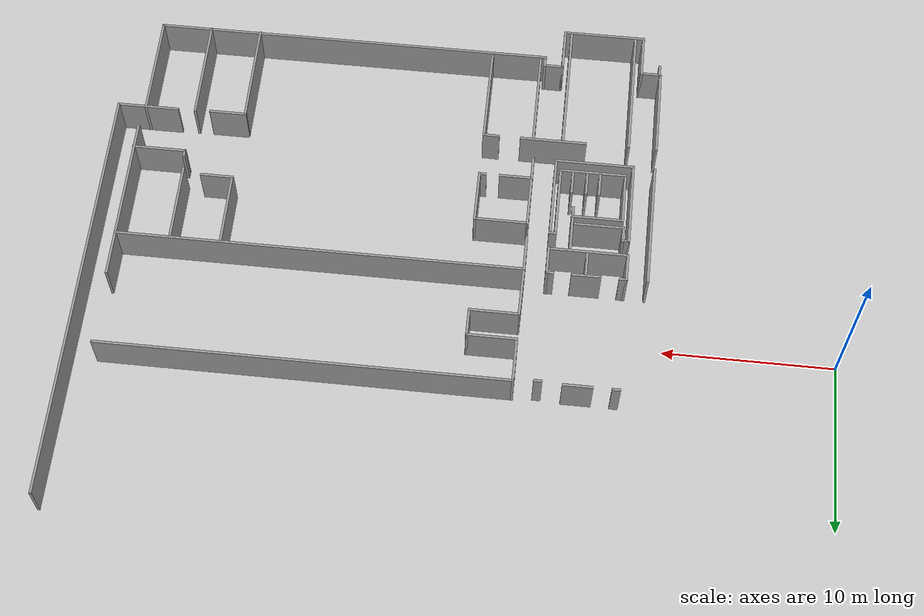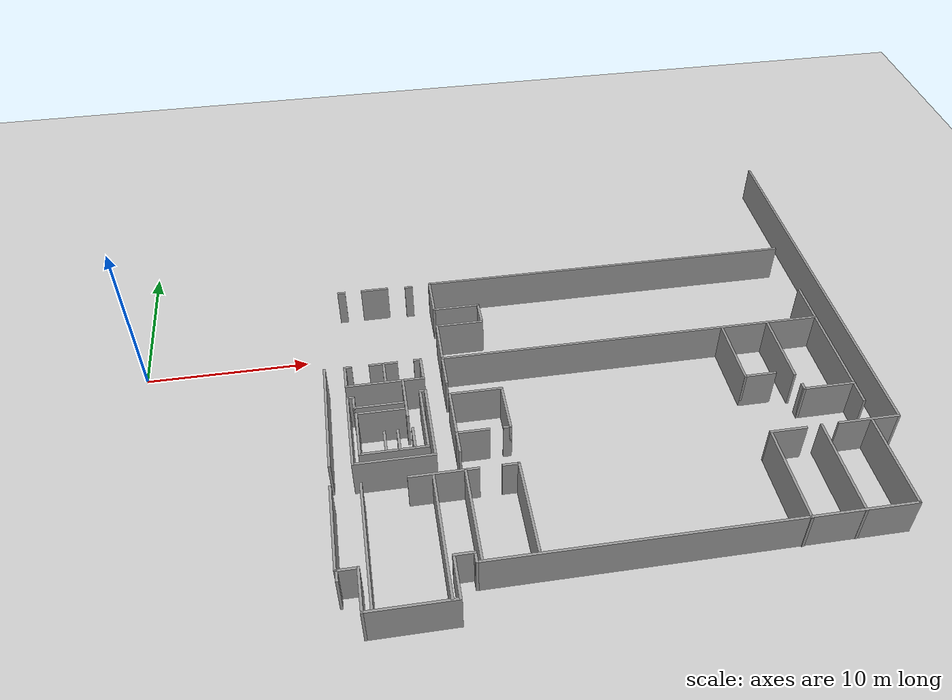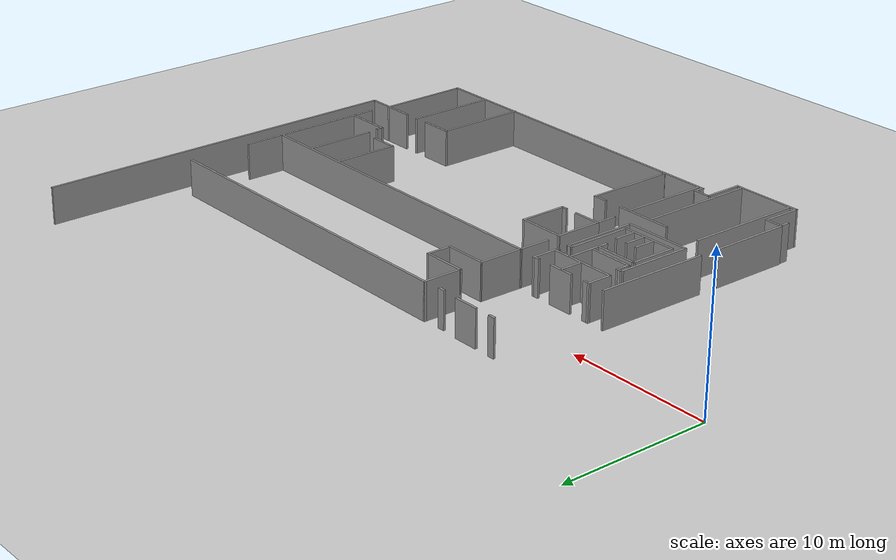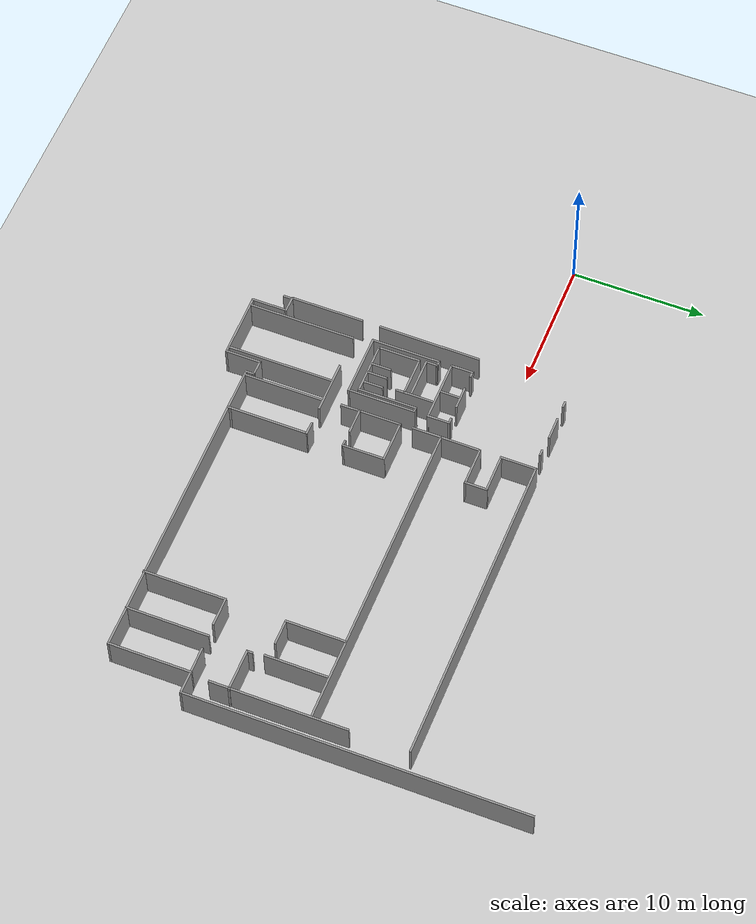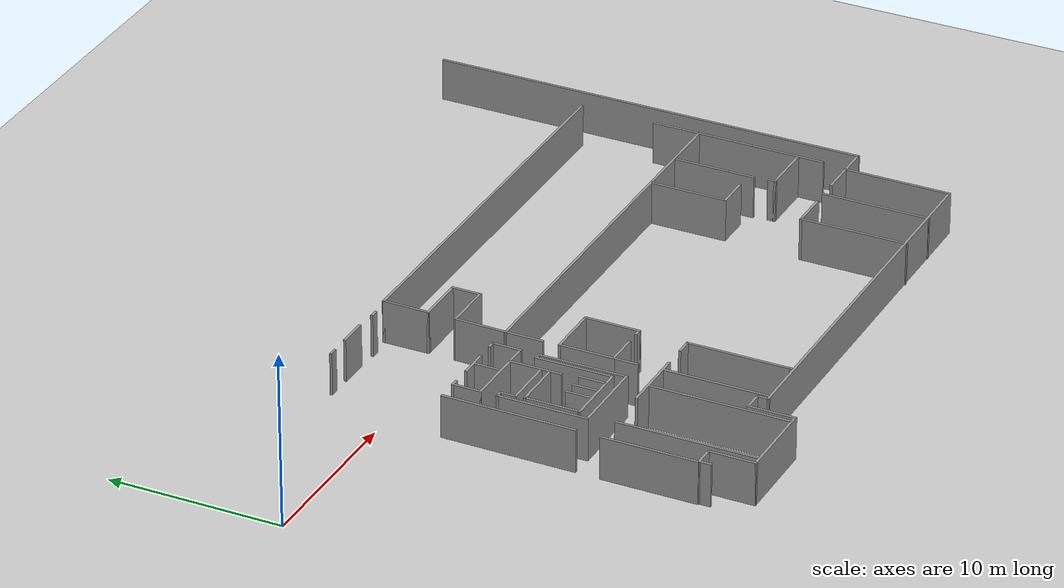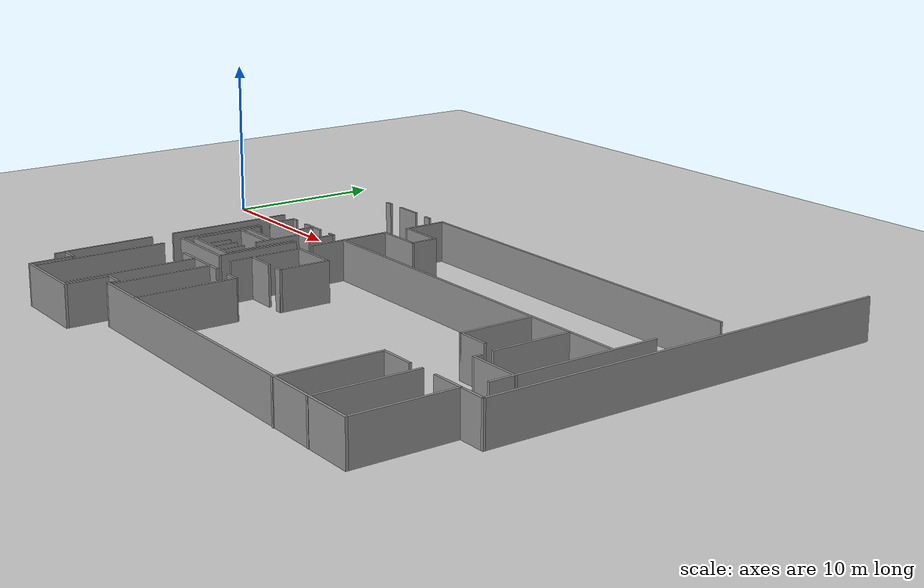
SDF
<sdf version="1.7">
 <world name="default">
  <model name="ground_plane">
   <static>1</static>
   <link name="link">
    <collision name="collision">
     <geometry><plane><normal>0 0 1</normal><size>100 100</size></plane></geometry>
     <surface>
      <contact><collide_bitmask>65535</collide_bitmask></contact>
      <friction><ode><mu>100</mu><mu2>50</mu2></ode></friction>
     </surface>
    </collision>
    <visual name="visual">
     <cast_shadows>0</cast_shadows>
     <geometry><plane><normal>0 0 1</normal><size>100 100</size></plane></geometry>
     <material>
      <script><uri>file://media/materials/scripts/gazebo.material</uri><name>Gazebo/Grey</name></script>
     </material>
    </visual>
   </link>
  </model>
  <model name="minerva">
   <pose>-0.765751 0.164905 0 0 -0 0</pose>
   <link name="Wall_102">
    <collision name="Wall_102_Collision">
     <geometry><box><size>5.5 0.15 2.5</size></box></geometry>
     <pose>0 0 1.25 0 -0 0</pose>
    </collision>
    <visual name="Wall_102_Visual">
     <pose>0 0 1.25 0 -0 0</pose>
     <geometry><box><size>5.5 0.15 2.5</size></box></geometry>
     <material>
      <script><uri>file://media/materials/scripts/gazebo.material</uri><name>Gazebo/Grey</name></script>
      <ambient>1 1 1 1</ambient>
     </material>
     <meta><layer>0</layer></meta>
    </visual>
    <pose>11.8632 -15.1957 0 0 -0 -1.5708</pose>
   </link>
   <link name="Wall_104">
    <collision name="Wall_104_Collision">
     <geometry><box><size>4 0.15 2.5</size></box></geometry>
     <pose>0 0 1.25 0 -0 0</pose>
    </collision>
    <visual name="Wall_104_Visual">
     <pose>0 0 1.25 0 -0 0</pose>
     <geometry><box><size>4 0.15 2.5</size></box></geometry>
     <material>
      <script><uri>file://media/materials/scripts/gazebo.material</uri><name>Gazebo/Grey</name></script>
      <ambient>1 1 1 1</ambient>
     </material>
     <meta><layer>0</layer></meta>
    </visual>
    <pose>18.0466 -12.4902 0 0 -0 0</pose>
   </link>
   <link name="Wall_106">
    <collision name="Wall_106_Collision">
     <geometry><box><size>8 0.15 2.5</size></box></geometry>
     <pose>0 0 1.25 0 -0 0</pose>
    </collision>
    <visual name="Wall_106_Visual">
     <pose>0 0 1.25 0 -0 0</pose>
     <geometry><box><size>8 0.15 2.5</size></box></geometry>
     <material>
      <script><uri>file://media/materials/scripts/gazebo.material</uri><name>Gazebo/Grey</name></script>
      <ambient>1 1 1 1</ambient>
     </material>
     <meta><layer>0</layer></meta>
    </visual>
    <pose>13.521 -16.4913 0 0 -0 -1.5708</pose>
   </link>
   <link name="Wall_110">
    <collision name="Wall_110_Collision">
     <geometry><box><size>8 0.15 2.5</size></box></geometry>
     <pose>0 0 1.25 0 -0 0</pose>
    </collision>
    <visual name="Wall_110_Visual">
     <pose>0 0 1.25 0 -0 0</pose>
     <geometry><box><size>8 0.15 2.5</size></box></geometry>
     <material>
      <script><uri>file://media/materials/scripts/gazebo.material</uri><name>Gazebo/Grey</name></script>
      <ambient>1 1 1 1</ambient>
     </material>
     <meta><layer>0</layer></meta>
    </visual>
    <pose>17.4752 -16.5217 0 0 -0 -1.5708</pose>
   </link>
   <link name="Wall_112">
    <collision name="Wall_112_Collision">
     <geometry><box><size>6 0.15 2.5</size></box></geometry>
     <pose>0 0 1.25 0 -0 0</pose>
    </collision>
    <visual name="Wall_112_Visual">
     <pose>0 0 1.25 0 -0 0</pose>
     <geometry><box><size>6 0.15 2.5</size></box></geometry>
     <material>
      <script><uri>file://media/materials/scripts/gazebo.material</uri><name>Gazebo/Grey</name></script>
      <ambient>1 1 1 1</ambient>
     </material>
     <meta><layer>0</layer></meta>
    </visual>
    <pose>19.2547 -15.4913 0 0 -0 -1.5708</pose>
   </link>
   <link name="Wall_114">
    <collision name="Wall_114_Collision">
     <geometry><box><size>1.01534 0.15 2.5</size></box></geometry>
     <pose>0 0 1.25 0 -0 0</pose>
    </collision>
    <visual name="Wall_114_Visual">
     <pose>0 0 1.25 0 -0 0</pose>
     <geometry><box><size>1.01534 0.15 2.5</size></box></geometry>
     <material>
      <script><uri>file://media/materials/scripts/gazebo.material</uri><name>Gazebo/Grey</name></script>
      <ambient>1 1 1 1</ambient>
     </material>
     <meta><layer>0</layer></meta>
    </visual>
    <pose>21.8013 -12.4978 0 0 -0 -0.017576</pose>
   </link>
   <link name="Wall_115">
    <collision name="Wall_115_Collision">
     <geometry><box><size>6 0.15 2.5</size></box></geometry>
     <pose>0 0 1.25 0 -0 0</pose>
    </collision>
    <visual name="Wall_115_Visual">
     <pose>0 0 1.25 0 -0 0</pose>
     <geometry><box><size>6 0.15 2.5</size></box></geometry>
     <material>
      <script><uri>file://media/materials/scripts/gazebo.material</uri><name>Gazebo/Grey</name></script>
      <ambient>1 1 1 1</ambient>
     </material>
     <meta><layer>0</layer></meta>
    </visual>
    <pose>22.2339 -15.4457 0 0 -0 -1.5708</pose>
   </link>
   <link name="Wall_117">
    <collision name="Wall_117_Collision">
     <geometry><box><size>0.25 0.15 2.5</size></box></geometry>
     <pose>0 0 1.25 0 -0 0</pose>
    </collision>
    <visual name="Wall_117_Visual">
     <pose>0 0 1.25 0 -0 0</pose>
     <geometry><box><size>0.25 0.15 2.5</size></box></geometry>
     <material>
      <script><uri>file://media/materials/scripts/gazebo.material</uri><name>Gazebo/Grey</name></script>
      <ambient>1 1 1 1</ambient>
     </material>
     <meta><layer>0</layer></meta>
    </visual>
    <pose>22.2339 -18.4207 0 0 -0 -1.5708</pose>
   </link>
   <link name="Wall_121">
    <collision name="Wall_121_Collision">
     <geometry><box><size>10.25 0.15 2.5</size></box></geometry>
     <pose>0 0 1.25 0 -0 0</pose>
    </collision>
    <visual name="Wall_121_Visual">
     <pose>0 0 1.25 0 -0 0</pose>
     <geometry><box><size>10.25 0.15 2.5</size></box></geometry>
     <material>
      <script><uri>file://media/materials/scripts/gazebo.material</uri><name>Gazebo/Grey</name></script>
      <ambient>1 1 1 1</ambient>
     </material>
     <meta><layer>0</layer></meta>
    </visual>
    <pose>43.02 -5.93158 0 0 -0 -1.5708</pose>
   </link>
   <link name="Wall_123">
    <collision name="Wall_123_Collision">
     <geometry><box><size>3.25 0.15 2.5</size></box></geometry>
     <pose>0 0 1.25 0 -0 0</pose>
    </collision>
    <visual name="Wall_123_Visual">
     <pose>0 0 1.25 0 -0 0</pose>
     <geometry><box><size>3.25 0.15 2.5</size></box></geometry>
     <material>
      <script><uri>file://media/materials/scripts/gazebo.material</uri><name>Gazebo/Grey</name></script>
      <ambient>1 1 1 1</ambient>
     </material>
     <meta><layer>0</layer></meta>
    </visual>
    <pose>41.4931 -9.52973 0 0 -0 3.14159</pose>
   </link>
   <link name="Wall_124">
    <collision name="Wall_124_Collision">
     <geometry><box><size>0.5 0.15 2.5</size></box></geometry>
     <pose>0 0 1.25 0 -0 0</pose>
    </collision>
    <visual name="Wall_124_Visual">
     <pose>0 0 1.25 0 -0 0</pose>
     <geometry><box><size>0.5 0.15 2.5</size></box></geometry>
     <material>
      <script><uri>file://media/materials/scripts/gazebo.material</uri><name>Gazebo/Grey</name></script>
      <ambient>1 1 1 1</ambient>
     </material>
     <meta><layer>0</layer></meta>
    </visual>
    <pose>39.9431 -9.35473 0 0 -0 1.5708</pose>
   </link>
   <link name="Wall_126">
    <collision name="Wall_126_Collision">
     <geometry><box><size>4.75 0.15 2.5</size></box></geometry>
     <pose>0 0 1.25 0 -0 0</pose>
    </collision>
    <visual name="Wall_126_Visual">
     <pose>0 0 1.25 0 -0 0</pose>
     <geometry><box><size>4.75 0.15 2.5</size></box></geometry>
     <material>
      <script><uri>file://media/materials/scripts/gazebo.material</uri><name>Gazebo/Grey</name></script>
      <ambient>1 1 1 1</ambient>
     </material>
     <meta><layer>0</layer></meta>
    </visual>
    <pose>39.8077 -5.97793 0 0 -0 -1.5708</pose>
   </link>
   <link name="Wall_128">
    <collision name="Wall_128_Collision">
     <geometry><box><size>4.5 0.15 2.5</size></box></geometry>
     <pose>0 0 1.25 0 -0 0</pose>
    </collision>
    <visual name="Wall_128_Visual">
     <pose>0 0 1.25 0 -0 0</pose>
     <geometry><box><size>4.5 0.15 2.5</size></box></geometry>
     <material>
      <script><uri>file://media/materials/scripts/gazebo.material</uri><name>Gazebo/Grey</name></script>
      <ambient>1 1 1 1</ambient>
     </material>
     <meta><layer>0</layer></meta>
    </visual>
    <pose>36.8268 -5.8073 0 0 -0 -1.5708</pose>
   </link>
   <link name="Wall_129">
    <collision name="Wall_129_Collision">
     <geometry><box><size>2 0.15 2.5</size></box></geometry>
     <pose>0 0 1.25 0 -0 0</pose>
    </collision>
    <visual name="Wall_129_Visual">
     <pose>0 0 1.25 0 -0 0</pose>
     <geometry><box><size>2 0.15 2.5</size></box></geometry>
     <material>
      <script><uri>file://media/materials/scripts/gazebo.material</uri><name>Gazebo/Grey</name></script>
      <ambient>1 1 1 1</ambient>
     </material>
     <meta><layer>0</layer></meta>
    </visual>
    <pose>37.7518 -7.9823 0 0 -0 0</pose>
   </link>
   <link name="Wall_131">
    <collision name="Wall_131_Collision">
     <geometry><box><size>24 0.15 2.5</size></box></geometry>
     <pose>0 0 1.25 0 -0 0</pose>
    </collision>
    <visual name="Wall_131_Visual">
     <pose>0 0 1.25 0 -0 0</pose>
     <geometry><box><size>24 0.15 2.5</size></box></geometry>
     <material>
      <script><uri>file://media/materials/scripts/gazebo.material</uri><name>Gazebo/Grey</name></script>
      <ambient>1 1 1 1</ambient>
     </material>
     <meta><layer>0</layer></meta>
    </visual>
    <pose>31.0157 -3.55626 0 0 -0 3.14159</pose>
   </link>
   <link name="Wall_133">
    <collision name="Wall_133_Collision">
     <geometry><box><size>2.25 0.15 2.5</size></box></geometry>
     <pose>0 0 1.25 0 -0 0</pose>
    </collision>
    <visual name="Wall_133_Visual">
     <pose>0 0 1.25 0 -0 0</pose>
     <geometry><box><size>2.25 0.15 2.5</size></box></geometry>
     <material>
      <script><uri>file://media/materials/scripts/gazebo.material</uri><name>Gazebo/Grey</name></script>
      <ambient>1 1 1 1</ambient>
     </material>
     <meta><layer>0</layer></meta>
    </visual>
    <pose>19.0907 -4.60626 0 0 -0 -1.5708</pose>
   </link>
   <link name="Wall_135">
    <collision name="Wall_135_Collision">
     <geometry><box><size>24 0.15 2.5</size></box></geometry>
     <pose>0 0 1.25 0 -0 0</pose>
    </collision>
    <visual name="Wall_135_Visual">
     <pose>0 0 1.25 0 -0 0</pose>
     <geometry><box><size>24 0.15 2.5</size></box></geometry>
     <material>
      <script><uri>file://media/materials/scripts/gazebo.material</uri><name>Gazebo/Grey</name></script>
      <ambient>1 1 1 1</ambient>
     </material>
     <meta><layer>0</layer></meta>
    </visual>
    <pose>31.0488 3.59185 0 0 -0 0</pose>
   </link>
   <link name="Wall_137">
    <collision name="Wall_137_Collision">
     <geometry><box><size>2.75 0.15 2.5</size></box></geometry>
     <pose>0 0 1.25 0 -0 0</pose>
    </collision>
    <visual name="Wall_137_Visual">
     <pose>0 0 1.25 0 -0 0</pose>
     <geometry><box><size>2.75 0.15 2.5</size></box></geometry>
     <material>
      <script><uri>file://media/materials/scripts/gazebo.material</uri><name>Gazebo/Grey</name></script>
      <ambient>1 1 1 1</ambient>
     </material>
     <meta><layer>0</layer></meta>
    </visual>
    <pose>19.1238 2.29185 0 0 -0 -1.5708</pose>
   </link>
   <link name="Wall_138">
    <collision name="Wall_138_Collision">
     <geometry><box><size>3 0.15 2.5</size></box></geometry>
     <pose>0 0 1.25 0 -0 0</pose>
    </collision>
    <visual name="Wall_138_Visual">
     <pose>0 0 1.25 0 -0 0</pose>
     <geometry><box><size>3 0.15 2.5</size></box></geometry>
     <material>
      <script><uri>file://media/materials/scripts/gazebo.material</uri><name>Gazebo/Grey</name></script>
      <ambient>1 1 1 1</ambient>
     </material>
     <meta><layer>0</layer></meta>
    </visual>
    <pose>20.5488 0.991855 0 0 -0 0</pose>
   </link>
   <link name="Wall_139">
    <collision name="Wall_139_Collision">
     <geometry><box><size>1.75 0.15 2.5</size></box></geometry>
     <pose>0 0 1.25 0 -0 0</pose>
    </collision>
    <visual name="Wall_139_Visual">
     <pose>0 0 1.25 0 -0 0</pose>
     <geometry><box><size>1.75 0.15 2.5</size></box></geometry>
     <material>
      <script><uri>file://media/materials/scripts/gazebo.material</uri><name>Gazebo/Grey</name></script>
      <ambient>1 1 1 1</ambient>
     </material>
     <meta><layer>0</layer></meta>
    </visual>
    <pose>21.9738 0.191855 0 0 -0 -1.5708</pose>
   </link>
   <link name="Wall_140">
    <collision name="Wall_140_Collision">
     <geometry><box><size>3 0.15 2.5</size></box></geometry>
     <pose>0 0 1.25 0 -0 0</pose>
    </collision>
    <visual name="Wall_140_Visual">
     <pose>0 0 1.25 0 -0 0</pose>
     <geometry><box><size>3 0.15 2.5</size></box></geometry>
     <material>
      <script><uri>file://media/materials/scripts/gazebo.material</uri><name>Gazebo/Grey</name></script>
      <ambient>1 1 1 1</ambient>
     </material>
     <meta><layer>0</layer></meta>
    </visual>
    <pose>20.5488 -0.608145 0 0 -0 3.14159</pose>
   </link>
   <link name="Wall_177">
    <collision name="Wall_177_Collision">
     <geometry><box><size>3.0983 0.15 2.5</size></box></geometry>
     <pose>0 0 1.25 0 -0 0</pose>
    </collision>
    <visual name="Wall_177_Visual">
     <pose>0 0 1.25 0 -0 0</pose>
     <geometry><box><size>3.0983 0.15 2.5</size></box></geometry>
     <material>
      <script><uri>file://media/materials/scripts/gazebo.material</uri><name>Gazebo/Grey</name></script>
      <ambient>1 1 1 1</ambient>
     </material>
     <meta><layer>0</layer></meta>
    </visual>
    <pose>19.1072 -2.0822 0 0 -0 -1.58202</pose>
   </link>
   <link name="Wall_179">
    <collision name="Wall_179_Collision">
     <geometry><box><size>3.25 0.15 2.5</size></box></geometry>
     <pose>0 0 1.25 0 -0 0</pose>
    </collision>
    <visual name="Wall_179_Visual">
     <pose>0 0 1.25 0 -0 0</pose>
     <geometry><box><size>3.25 0.15 2.5</size></box></geometry>
     <material>
      <script><uri>file://media/materials/scripts/gazebo.material</uri><name>Gazebo/Grey</name></script>
      <ambient>1 1 1 1</ambient>
     </material>
     <meta><layer>0</layer></meta>
    </visual>
    <pose>20.6923 -6.63787 0 0 -0 0</pose>
   </link>
   <link name="Wall_180">
    <collision name="Wall_180_Collision">
     <geometry><box><size>3.25 0.15 2.5</size></box></geometry>
     <pose>0 0 1.25 0 -0 0</pose>
    </collision>
    <visual name="Wall_180_Visual">
     <pose>0 0 1.25 0 -0 0</pose>
     <geometry><box><size>3.25 0.15 2.5</size></box></geometry>
     <material>
      <script><uri>file://media/materials/scripts/gazebo.material</uri><name>Gazebo/Grey</name></script>
      <ambient>1 1 1 1</ambient>
     </material>
     <meta><layer>0</layer></meta>
    </visual>
    <pose>22.2423 -8.18787 0 0 -0 -1.5708</pose>
   </link>
   <link name="Wall_182">
    <collision name="Wall_182_Collision">
     <geometry><box><size>0.5 0.15 2.5</size></box></geometry>
     <pose>0 0 1.25 0 -0 0</pose>
    </collision>
    <visual name="Wall_182_Visual">
     <pose>0 0 1.25 0 -0 0</pose>
     <geometry><box><size>0.5 0.15 2.5</size></box></geometry>
     <material>
      <script><uri>file://media/materials/scripts/gazebo.material</uri><name>Gazebo/Grey</name></script>
      <ambient>1 1 1 1</ambient>
     </material>
     <meta><layer>0</layer></meta>
    </visual>
    <pose>22.0673 -9.73787 0 0 -0 3.14159</pose>
   </link>
   <link name="Wall_184">
    <collision name="Wall_184_Collision">
     <geometry><box><size>3.25 0.15 2.5</size></box></geometry>
     <pose>0 0 1.25 0 -0 0</pose>
    </collision>
    <visual name="Wall_184_Visual">
     <pose>0 0 1.25 0 -0 0</pose>
     <geometry><box><size>3.25 0.15 2.5</size></box></geometry>
     <material>
      <script><uri>file://media/materials/scripts/gazebo.material</uri><name>Gazebo/Grey</name></script>
      <ambient>1 1 1 1</ambient>
     </material>
     <meta><layer>0</layer></meta>
    </visual>
    <pose>19.1423 -8.18787 0 0 -0 -1.5708</pose>
   </link>
   <link name="Wall_185">
    <collision name="Wall_185_Collision">
     <geometry><box><size>2 0.15 2.5</size></box></geometry>
     <pose>0 0 1.25 0 -0 0</pose>
    </collision>
    <visual name="Wall_185_Visual">
     <pose>0 0 1.25 0 -0 0</pose>
     <geometry><box><size>2 0.15 2.5</size></box></geometry>
     <material>
      <script><uri>file://media/materials/scripts/gazebo.material</uri><name>Gazebo/Grey</name></script>
      <ambient>1 1 1 1</ambient>
     </material>
     <meta><layer>0</layer></meta>
    </visual>
    <pose>20.0673 -9.73787 0 0 -0 0</pose>
   </link>
   <link name="Wall_187">
    <collision name="Wall_187_Collision">
     <geometry><box><size>1.5 0.15 2.5</size></box></geometry>
     <pose>0 0 1.25 0 -0 0</pose>
    </collision>
    <visual name="Wall_187_Visual">
     <pose>0 0 1.25 0 -0 0</pose>
     <geometry><box><size>1.5 0.15 2.5</size></box></geometry>
     <material>
      <script><uri>file://media/materials/scripts/gazebo.material</uri><name>Gazebo/Grey</name></script>
      <ambient>1 1 1 1</ambient>
     </material>
     <meta><layer>0</layer></meta>
    </visual>
    <pose>19.1423 -10.4129 0 0 -0 -1.5708</pose>
   </link>
   <link name="Wall_190">
    <collision name="Wall_190_Collision">
     <geometry><box><size>0.5 0.15 2.5</size></box></geometry>
     <pose>0 0 1.25 0 -0 0</pose>
    </collision>
    <visual name="Wall_190_Visual">
     <pose>0 0 1.25 0 -0 0</pose>
     <geometry><box><size>0.5 0.15 2.5</size></box></geometry>
     <material>
      <script><uri>file://media/materials/scripts/gazebo.material</uri><name>Gazebo/Grey</name></script>
      <ambient>1 1 1 1</ambient>
     </material>
     <meta><layer>0</layer></meta>
    </visual>
    <pose>13.3368 -3.46404 0 0 -0 3.14159</pose>
   </link>
   <link name="Wall_193">
    <collision name="Wall_193_Collision">
     <geometry><box><size>1.75 0.15 2.5</size></box></geometry>
     <pose>0 0 1.25 0 -0 0</pose>
    </collision>
    <visual name="Wall_193_Visual">
     <pose>0 0 1.25 0 -0 0</pose>
     <geometry><box><size>1.75 0.15 2.5</size></box></geometry>
     <material>
      <script><uri>file://media/materials/scripts/gazebo.material</uri><name>Gazebo/Grey</name></script>
      <ambient>1 1 1 1</ambient>
     </material>
     <meta><layer>0</layer></meta>
    </visual>
    <pose>13.1618 -4.26404 0 0 -0 -1.5708</pose>
   </link>
   <link name="Wall_194">
    <collision name="Wall_194_Collision">
     <geometry><box><size>4.75 0.15 2.5</size></box></geometry>
     <pose>0 0 1.25 0 -0 0</pose>
    </collision>
    <visual name="Wall_194_Visual">
     <pose>0 0 1.25 0 -0 0</pose>
     <geometry><box><size>4.75 0.15 2.5</size></box></geometry>
     <material>
      <script><uri>file://media/materials/scripts/gazebo.material</uri><name>Gazebo/Grey</name></script>
      <ambient>1 1 1 1</ambient>
     </material>
     <meta><layer>0</layer></meta>
    </visual>
    <pose>15.4618 -5.06404 0 0 -0 0</pose>
   </link>
   <link name="Wall_195">
    <collision name="Wall_195_Collision">
     <geometry><box><size>1.75 0.15 2.5</size></box></geometry>
     <pose>0 0 1.25 0 -0 0</pose>
    </collision>
    <visual name="Wall_195_Visual">
     <pose>0 0 1.25 0 -0 0</pose>
     <geometry><box><size>1.75 0.15 2.5</size></box></geometry>
     <material>
      <script><uri>file://media/materials/scripts/gazebo.material</uri><name>Gazebo/Grey</name></script>
      <ambient>1 1 1 1</ambient>
     </material>
     <meta><layer>0</layer></meta>
    </visual>
    <pose>17.7618 -4.26404 0 0 -0 1.5708</pose>
   </link>
   <link name="Wall_196">
    <collision name="Wall_196_Collision">
     <geometry><box><size>0.5 0.15 2.5</size></box></geometry>
     <pose>0 0 1.25 0 -0 0</pose>
    </collision>
    <visual name="Wall_196_Visual">
     <pose>0 0 1.25 0 -0 0</pose>
     <geometry><box><size>0.5 0.15 2.5</size></box></geometry>
     <material>
      <script><uri>file://media/materials/scripts/gazebo.material</uri><name>Gazebo/Grey</name></script>
      <ambient>1 1 1 1</ambient>
     </material>
     <meta><layer>0</layer></meta>
    </visual>
    <pose>17.5868 -3.46404 0 0 -0 3.14159</pose>
   </link>
   <link name="Wall_198">
    <collision name="Wall_198_Collision">
     <geometry><box><size>1.75 0.15 2.5</size></box></geometry>
     <pose>0 0 1.25 0 -0 0</pose>
    </collision>
    <visual name="Wall_198_Visual">
     <pose>0 0 1.25 0 -0 0</pose>
     <geometry><box><size>1.75 0.15 2.5</size></box></geometry>
     <material>
      <script><uri>file://media/materials/scripts/gazebo.material</uri><name>Gazebo/Grey</name></script>
      <ambient>1 1 1 1</ambient>
     </material>
     <meta><layer>0</layer></meta>
    </visual>
    <pose>15.4834 -3.47701 0 0 -0 0</pose>
   </link>
   <link name="Wall_200">
    <collision name="Wall_200_Collision">
     <geometry><box><size>1.5 0.15 2.5</size></box></geometry>
     <pose>0 0 1.25 0 -0 0</pose>
    </collision>
    <visual name="Wall_200_Visual">
     <pose>0 0 1.25 0 -0 0</pose>
     <geometry><box><size>1.5 0.15 2.5</size></box></geometry>
     <material>
      <script><uri>file://media/materials/scripts/gazebo.material</uri><name>Gazebo/Grey</name></script>
      <ambient>1 1 1 1</ambient>
     </material>
     <meta><layer>0</layer></meta>
    </visual>
    <pose>15.5048 -4.25145 0 0 -0 -1.5708</pose>
   </link>
   <link name="Wall_202">
    <collision name="Wall_202_Collision">
     <geometry><box><size>3 0.15 2.5</size></box></geometry>
     <pose>0 0 1.25 0 -0 0</pose>
    </collision>
    <visual name="Wall_202_Visual">
     <pose>0 0 1.25 0 -0 0</pose>
     <geometry><box><size>3 0.15 2.5</size></box></geometry>
     <material>
      <script><uri>file://media/materials/scripts/gazebo.material</uri><name>Gazebo/Grey</name></script>
      <ambient>1 1 1 1</ambient>
     </material>
     <meta><layer>0</layer></meta>
    </visual>
    <pose>16.5236 -6.53429 0 0 -0 -1.5708</pose>
   </link>
   <link name="Wall_204">
    <collision name="Wall_204_Collision">
     <geometry><box><size>0.5 0.15 2.5</size></box></geometry>
     <pose>0 0 1.25 0 -0 0</pose>
    </collision>
    <visual name="Wall_204_Visual">
     <pose>0 0 1.25 0 -0 0</pose>
     <geometry><box><size>0.5 0.15 2.5</size></box></geometry>
     <material>
      <script><uri>file://media/materials/scripts/gazebo.material</uri><name>Gazebo/Grey</name></script>
      <ambient>1 1 1 1</ambient>
     </material>
     <meta><layer>0</layer></meta>
    </visual>
    <pose>13.3406 -6.01779 0 0 -0 0</pose>
   </link>
   <link name="Wall_205">
    <collision name="Wall_205_Collision">
     <geometry><box><size>1 0.15 2.5</size></box></geometry>
     <pose>0 0 1.25 0 -0 0</pose>
    </collision>
    <visual name="Wall_205_Visual">
     <pose>0 0 1.25 0 -0 0</pose>
     <geometry><box><size>1 0.15 2.5</size></box></geometry>
     <material>
      <script><uri>file://media/materials/scripts/gazebo.material</uri><name>Gazebo/Grey</name></script>
      <ambient>1 1 1 1</ambient>
     </material>
     <meta><layer>0</layer></meta>
    </visual>
    <pose>13.5156 -6.44279 0 0 -0 -1.5708</pose>
   </link>
   <link name="Wall_206">
    <collision name="Wall_206_Collision">
     <geometry><box><size>3 0.15 2.5</size></box></geometry>
     <pose>0 0 1.25 0 -0 0</pose>
    </collision>
    <visual name="Wall_206_Visual">
     <pose>0 0 1.25 0 -0 0</pose>
     <geometry><box><size>3 0.15 2.5</size></box></geometry>
     <material>
      <script><uri>file://media/materials/scripts/gazebo.material</uri><name>Gazebo/Grey</name></script>
      <ambient>1 1 1 1</ambient>
     </material>
     <meta><layer>0</layer></meta>
    </visual>
    <pose>14.9406 -6.86779 0 0 -0 0</pose>
   </link>
   <link name="Wall_208">
    <collision name="Wall_208_Collision">
     <geometry><box><size>5.25 0.15 2.5</size></box></geometry>
     <pose>0 0 1.25 0 -0 0</pose>
    </collision>
    <visual name="Wall_208_Visual">
     <pose>0 0 1.25 0 -0 0</pose>
     <geometry><box><size>5.25 0.15 2.5</size></box></geometry>
     <material>
      <script><uri>file://media/materials/scripts/gazebo.material</uri><name>Gazebo/Grey</name></script>
      <ambient>1 1 1 1</ambient>
     </material>
     <meta><layer>0</layer></meta>
    </visual>
    <pose>13.1656 -8.56779 0 0 -0 -1.5708</pose>
   </link>
   <link name="Wall_209">
    <collision name="Wall_209_Collision">
     <geometry><box><size>4.75 0.15 2.5</size></box></geometry>
     <pose>0 0 1.25 0 -0 0</pose>
    </collision>
    <visual name="Wall_209_Visual">
     <pose>0 0 1.25 0 -0 0</pose>
     <geometry><box><size>4.75 0.15 2.5</size></box></geometry>
     <material>
      <script><uri>file://media/materials/scripts/gazebo.material</uri><name>Gazebo/Grey</name></script>
      <ambient>1 1 1 1</ambient>
     </material>
     <meta><layer>0</layer></meta>
    </visual>
    <pose>15.4656 -11.1178 0 0 -0 0</pose>
   </link>
   <link name="Wall_213">
    <collision name="Wall_213_Collision">
     <geometry><box><size>3 0.15 2.5</size></box></geometry>
     <pose>0 0 1.25 0 -0 0</pose>
    </collision>
    <visual name="Wall_213_Visual">
     <pose>0 0 1.25 0 -0 0</pose>
     <geometry><box><size>3 0.15 2.5</size></box></geometry>
     <material>
      <script><uri>file://media/materials/scripts/gazebo.material</uri><name>Gazebo/Grey</name></script>
      <ambient>1 1 1 1</ambient>
     </material>
     <meta><layer>0</layer></meta>
    </visual>
    <pose>15.0261 -7.36705 0 0 -0 3.14159</pose>
   </link>
   <link name="Wall_214">
    <collision name="Wall_214_Collision">
     <geometry><box><size>3.25 0.15 2.5</size></box></geometry>
     <pose>0 0 1.25 0 -0 0</pose>
    </collision>
    <visual name="Wall_214_Visual">
     <pose>0 0 1.25 0 -0 0</pose>
     <geometry><box><size>3.25 0.15 2.5</size></box></geometry>
     <material>
      <script><uri>file://media/materials/scripts/gazebo.material</uri><name>Gazebo/Grey</name></script>
      <ambient>1 1 1 1</ambient>
     </material>
     <meta><layer>0</layer></meta>
    </visual>
    <pose>13.6011 -8.91705 0 0 -0 -1.5708</pose>
   </link>
   <link name="Wall_215">
    <collision name="Wall_215_Collision">
     <geometry><box><size>4 0.15 2.5</size></box></geometry>
     <pose>0 0 1.25 0 -0 0</pose>
    </collision>
    <visual name="Wall_215_Visual">
     <pose>0 0 1.25 0 -0 0</pose>
     <geometry><box><size>4 0.15 2.5</size></box></geometry>
     <material>
      <script><uri>file://media/materials/scripts/gazebo.material</uri><name>Gazebo/Grey</name></script>
      <ambient>1 1 1 1</ambient>
     </material>
     <meta><layer>0</layer></meta>
    </visual>
    <pose>15.5261 -10.4671 0 0 -0 0</pose>
   </link>
   <link name="Wall_217">
    <collision name="Wall_217_Collision">
     <geometry><box><size>4.5 0.15 2.5</size></box></geometry>
     <pose>0 0 1.25 0 -0 0</pose>
    </collision>
    <visual name="Wall_217_Visual">
     <pose>0 0 1.25 0 -0 0</pose>
     <geometry><box><size>4.5 0.15 2.5</size></box></geometry>
     <material>
      <script><uri>file://media/materials/scripts/gazebo.material</uri><name>Gazebo/Grey</name></script>
      <ambient>1 1 1 1</ambient>
     </material>
     <meta><layer>0</layer></meta>
    </visual>
    <pose>17.4511 -8.29205 0 0 -0 1.5708</pose>
   </link>
   <link name="Wall_219">
    <collision name="Wall_219_Collision">
     <geometry><box><size>0.463327 0.15 2.5</size></box></geometry>
     <pose>0 0 1.25 0 -0 0</pose>
    </collision>
    <visual name="Wall_219_Visual">
     <pose>0 0 1.25 0 -0 0</pose>
     <geometry><box><size>0.463327 0.15 2.5</size></box></geometry>
     <material>
      <script><uri>file://media/materials/scripts/gazebo.material</uri><name>Gazebo/Grey</name></script>
      <ambient>1 1 1 1</ambient>
     </material>
     <meta><layer>0</layer></meta>
    </visual>
    <pose>17.6078 -6.11705 0 0 -0 0</pose>
   </link>
   <link name="Wall_220">
    <collision name="Wall_220_Collision">
     <geometry><box><size>5 0.15 2.5</size></box></geometry>
     <pose>0 0 1.25 0 -0 0</pose>
    </collision>
    <visual name="Wall_220_Visual">
     <pose>0 0 1.25 0 -0 0</pose>
     <geometry><box><size>5 0.15 2.5</size></box></geometry>
     <material>
      <script><uri>file://media/materials/scripts/gazebo.material</uri><name>Gazebo/Grey</name></script>
      <ambient>1 1 1 1</ambient>
     </material>
     <meta><layer>0</layer></meta>
    </visual>
    <pose>17.7645 -8.54205 0 0 -0 -1.5708</pose>
   </link>
   <link name="Wall_224">
    <collision name="Wall_224_Collision">
     <geometry><box><size>1.5 0.15 2.5</size></box></geometry>
     <pose>0 0 1.25 0 -0 0</pose>
    </collision>
    <visual name="Wall_224_Visual">
     <pose>0 0 1.25 0 -0 0</pose>
     <geometry><box><size>1.5 0.15 2.5</size></box></geometry>
     <material>
      <script><uri>file://media/materials/scripts/gazebo.material</uri><name>Gazebo/Grey</name></script>
      <ambient>1 1 1 1</ambient>
     </material>
     <meta><layer>0</layer></meta>
    </visual>
    <pose>15.0851 -9.70149 0 0 -0 -1.5708</pose>
   </link>
   <link name="Wall_226">
    <collision name="Wall_226_Collision">
     <geometry><box><size>1.5 0.15 2.5</size></box></geometry>
     <pose>0 0 1.25 0 -0 0</pose>
    </collision>
    <visual name="Wall_226_Visual">
     <pose>0 0 1.25 0 -0 0</pose>
     <geometry><box><size>1.5 0.15 2.5</size></box></geometry>
     <material>
      <script><uri>file://media/materials/scripts/gazebo.material</uri><name>Gazebo/Grey</name></script>
      <ambient>1 1 1 1</ambient>
     </material>
     <meta><layer>0</layer></meta>
    </visual>
    <pose>15.8544 -9.70807 0 0 -0 -1.5708</pose>
   </link>
   <link name="Wall_228">
    <collision name="Wall_228_Collision">
     <geometry><box><size>1.5 0.15 2.5</size></box></geometry>
     <pose>0 0 1.25 0 -0 0</pose>
    </collision>
    <visual name="Wall_228_Visual">
     <pose>0 0 1.25 0 -0 0</pose>
     <geometry><box><size>1.5 0.15 2.5</size></box></geometry>
     <material>
      <script><uri>file://media/materials/scripts/gazebo.material</uri><name>Gazebo/Grey</name></script>
      <ambient>1 1 1 1</ambient>
     </material>
     <meta><layer>0</layer></meta>
    </visual>
    <pose>16.7092 -9.68834 0 0 -0 -1.5708</pose>
   </link>
   <link name="Wall_237">
    <collision name="Wall_237_Collision">
     <geometry><box><size>7.71212 0.15 2.5</size></box></geometry>
     <pose>0 0 1.25 0 -0 0</pose>
    </collision>
    <visual name="Wall_237_Visual">
     <pose>0 0 1.25 0 -0 0</pose>
     <geometry><box><size>7.71212 0.15 2.5</size></box></geometry>
     <material>
      <script><uri>file://media/materials/scripts/gazebo.material</uri><name>Gazebo/Grey</name></script>
      <ambient>1 1 1 1</ambient>
     </material>
     <meta><layer>0</layer></meta>
    </visual>
    <pose>11.9116 -7.25711 0 0 -0 -1.5772</pose>
   </link>
   <link name="Wall_448">
    <collision name="Wall_448_Collision">
     <geometry><box><size>0.5 0.15 2.5</size></box></geometry>
     <pose>0 0 1.25 0 -0 0</pose>
    </collision>
    <visual name="Wall_448_Visual">
     <pose>0 0 1.25 0 -0 0</pose>
     <geometry><box><size>0.5 0.15 2.5</size></box></geometry>
     <material>
      <script><uri>file://media/materials/scripts/gazebo.material</uri><name>Gazebo/Grey</name></script>
      <ambient>1 1 1 1</ambient>
     </material>
     <meta><layer>0</layer></meta>
    </visual>
    <pose>13.3343 3.57352 0 0 -0 0</pose>
   </link>
   <link name="Wall_450">
    <collision name="Wall_450_Collision">
     <geometry><box><size>1.75 0.15 2.5</size></box></geometry>
     <pose>0 0 1.25 0 -0 0</pose>
    </collision>
    <visual name="Wall_450_Visual">
     <pose>0 0 1.25 0 -0 0</pose>
     <geometry><box><size>1.75 0.15 2.5</size></box></geometry>
     <material>
      <script><uri>file://media/materials/scripts/gazebo.material</uri><name>Gazebo/Grey</name></script>
      <ambient>1 1 1 1</ambient>
     </material>
     <meta><layer>0</layer></meta>
    </visual>
    <pose>15.4969 3.56401 0 0 -0 0</pose>
   </link>
   <link name="Wall_455">
    <collision name="Wall_455_Collision">
     <geometry><box><size>0.5 0.15 2.5</size></box></geometry>
     <pose>0 0 1.25 0 -0 0</pose>
    </collision>
    <visual name="Wall_455_Visual">
     <pose>0 0 1.25 0 -0 0</pose>
     <geometry><box><size>0.5 0.15 2.5</size></box></geometry>
     <material>
      <script><uri>file://media/materials/scripts/gazebo.material</uri><name>Gazebo/Grey</name></script>
      <ambient>1 1 1 1</ambient>
     </material>
     <meta><layer>0</layer></meta>
    </visual>
    <pose>17.7343 3.47352 0 0 -0 3.14159</pose>
   </link>
   <link name="Wall_48">
    <collision name="Wall_48_Collision">
     <geometry><box><size>25.5 0.15 2.5</size></box></geometry>
     <pose>0 0 1.25 0 -0 0</pose>
    </collision>
    <visual name="Wall_48_Visual">
     <pose>0 0 1.25 0 -0 0</pose>
     <geometry><box><size>25.5 0.15 2.5</size></box></geometry>
     <material>
      <script><uri>file://media/materials/scripts/gazebo.material</uri><name>Gazebo/Grey</name></script>
      <ambient>1 1 1 1</ambient>
     </material>
     <meta><layer>0</layer></meta>
    </visual>
    <pose>44.5 0.235782 0 0 -0 -1.5708</pose>
   </link>
   <link name="Wall_50">
    <collision name="Wall_50_Collision">
     <geometry><box><size>3.75 0.15 2.5</size></box></geometry>
     <pose>0 0 1.25 0 -0 0</pose>
    </collision>
    <visual name="Wall_50_Visual">
     <pose>0 0 1.25 0 -0 0</pose>
     <geometry><box><size>3.75 0.15 2.5</size></box></geometry>
     <material>
      <script><uri>file://media/materials/scripts/gazebo.material</uri><name>Gazebo/Grey</name></script>
      <ambient>1 1 1 1</ambient>
     </material>
     <meta><layer>0</layer></meta>
    </visual>
    <pose>42.7 -12.4392 0 0 -0 3.14159</pose>
   </link>
   <link name="Wall_52">
    <collision name="Wall_52_Collision">
     <geometry><box><size>2.25 0.15 2.5</size></box></geometry>
     <pose>0 0 1.25 0 -0 0</pose>
    </collision>
    <visual name="Wall_52_Visual">
     <pose>0 0 1.25 0 -0 0</pose>
     <geometry><box><size>2.25 0.15 2.5</size></box></geometry>
     <material>
      <script><uri>file://media/materials/scripts/gazebo.material</uri><name>Gazebo/Grey</name></script>
      <ambient>1 1 1 1</ambient>
     </material>
     <meta><layer>0</layer></meta>
    </visual>
    <pose>37.8117 -12.4936 0 0 -0 3.14159</pose>
   </link>
   <link name="Wall_54">
    <collision name="Wall_54_Collision">
     <geometry><box><size>6.25 0.15 2.5</size></box></geometry>
     <pose>0 0 1.25 0 -0 0</pose>
    </collision>
    <visual name="Wall_54_Visual">
     <pose>0 0 1.25 0 -0 0</pose>
     <geometry><box><size>6.25 0.15 2.5</size></box></geometry>
     <material>
      <script><uri>file://media/materials/scripts/gazebo.material</uri><name>Gazebo/Grey</name></script>
      <ambient>1 1 1 1</ambient>
     </material>
     <meta><layer>0</layer></meta>
    </visual>
    <pose>36.7617 -15.5436 0 0 -0 -1.5708</pose>
   </link>
   <link name="Wall_56">
    <collision name="Wall_56_Collision">
     <geometry><box><size>6.25 0.15 2.5</size></box></geometry>
     <pose>0 0 1.25 0 -0 0</pose>
    </collision>
    <visual name="Wall_56_Visual">
     <pose>0 0 1.25 0 -0 0</pose>
     <geometry><box><size>6.25 0.15 2.5</size></box></geometry>
     <material>
      <script><uri>file://media/materials/scripts/gazebo.material</uri><name>Gazebo/Grey</name></script>
      <ambient>1 1 1 1</ambient>
     </material>
     <meta><layer>0</layer></meta>
    </visual>
    <pose>39.8127 -15.5156 0 0 -0 -1.5708</pose>
   </link>
   <link name="Wall_58">
    <collision name="Wall_58_Collision">
     <geometry><box><size>6.25 0.15 2.5</size></box></geometry>
     <pose>0 0 1.25 0 -0 0</pose>
    </collision>
    <visual name="Wall_58_Visual">
     <pose>0 0 1.25 0 -0 0</pose>
     <geometry><box><size>6.25 0.15 2.5</size></box></geometry>
     <material>
      <script><uri>file://media/materials/scripts/gazebo.material</uri><name>Gazebo/Grey</name></script>
      <ambient>1 1 1 1</ambient>
     </material>
     <meta><layer>0</layer></meta>
    </visual>
    <pose>42.828 -15.4891 0 0 -0 -1.5708</pose>
   </link>
   <link name="Wall_60">
    <collision name="Wall_60_Collision">
     <geometry><box><size>24 0.15 2.5</size></box></geometry>
     <pose>0 0 1.25 0 -0 0</pose>
    </collision>
    <visual name="Wall_60_Visual">
     <pose>0 0 1.25 0 -0 0</pose>
     <geometry><box><size>24 0.15 2.5</size></box></geometry>
     <material>
      <script><uri>file://media/materials/scripts/gazebo.material</uri><name>Gazebo/Grey</name></script>
      <ambient>1 1 1 1</ambient>
     </material>
     <meta><layer>0</layer></meta>
    </visual>
    <pose>30.903 -18.5391 0 0 -0 3.14159</pose>
   </link>
   <link name="Wall_61">
    <collision name="Wall_61_Collision">
     <geometry><box><size>0.75 0.15 2.5</size></box></geometry>
     <pose>0 0 1.25 0 -0 0</pose>
    </collision>
    <visual name="Wall_61_Visual">
     <pose>0 0 1.25 0 -0 0</pose>
     <geometry><box><size>0.75 0.15 2.5</size></box></geometry>
     <material>
      <script><uri>file://media/materials/scripts/gazebo.material</uri><name>Gazebo/Grey</name></script>
      <ambient>1 1 1 1</ambient>
     </material>
     <meta><layer>0</layer></meta>
    </visual>
    <pose>18.978 -18.2391 0 0 -0 1.5708</pose>
   </link>
   <link name="Wall_62">
    <collision name="Wall_62_Collision">
     <geometry><box><size>1.25 0.15 2.5</size></box></geometry>
     <pose>0 0 1.25 0 -0 0</pose>
    </collision>
    <visual name="Wall_62_Visual">
     <pose>0 0 1.25 0 -0 0</pose>
     <geometry><box><size>1.25 0.15 2.5</size></box></geometry>
     <material>
      <script><uri>file://media/materials/scripts/gazebo.material</uri><name>Gazebo/Grey</name></script>
      <ambient>1 1 1 1</ambient>
     </material>
     <meta><layer>0</layer></meta>
    </visual>
    <pose>18.428 -17.9391 0 0 -0 3.14159</pose>
   </link>
   <link name="Wall_64">
    <collision name="Wall_64_Collision">
     <geometry><box><size>2.75 0.15 2.5</size></box></geometry>
     <pose>0 0 1.25 0 -0 0</pose>
    </collision>
    <visual name="Wall_64_Visual">
     <pose>0 0 1.25 0 -0 0</pose>
     <geometry><box><size>2.75 0.15 2.5</size></box></geometry>
     <material>
      <script><uri>file://media/materials/scripts/gazebo.material</uri><name>Gazebo/Grey</name></script>
      <ambient>1 1 1 1</ambient>
     </material>
     <meta><layer>0</layer></meta>
    </visual>
    <pose>17.878 -19.2391 0 0 -0 -1.5708</pose>
   </link>
   <link name="Wall_65">
    <collision name="Wall_65_Collision">
     <geometry><box><size>5 0.15 2.5</size></box></geometry>
     <pose>0 0 1.25 0 -0 0</pose>
    </collision>
    <visual name="Wall_65_Visual">
     <pose>0 0 1.25 0 -0 0</pose>
     <geometry><box><size>5 0.15 2.5</size></box></geometry>
     <material>
      <script><uri>file://media/materials/scripts/gazebo.material</uri><name>Gazebo/Grey</name></script>
      <ambient>1 1 1 1</ambient>
     </material>
     <meta><layer>0</layer></meta>
    </visual>
    <pose>15.453 -20.5391 0 0 -0 3.14159</pose>
   </link>
   <link name="Wall_66">
    <collision name="Wall_66_Collision">
     <geometry><box><size>2.75 0.15 2.5</size></box></geometry>
     <pose>0 0 1.25 0 -0 0</pose>
    </collision>
    <visual name="Wall_66_Visual">
     <pose>0 0 1.25 0 -0 0</pose>
     <geometry><box><size>2.75 0.15 2.5</size></box></geometry>
     <material>
      <script><uri>file://media/materials/scripts/gazebo.material</uri><name>Gazebo/Grey</name></script>
      <ambient>1 1 1 1</ambient>
     </material>
     <meta><layer>0</layer></meta>
    </visual>
    <pose>13.028 -19.2391 0 0 -0 1.5708</pose>
   </link>
   <link name="Wall_67">
    <collision name="Wall_67_Collision">
     <geometry><box><size>1.25 0.15 2.5</size></box></geometry>
     <pose>0 0 1.25 0 -0 0</pose>
    </collision>
    <visual name="Wall_67_Visual">
     <pose>0 0 1.25 0 -0 0</pose>
     <geometry><box><size>1.25 0.15 2.5</size></box></geometry>
     <material>
      <script><uri>file://media/materials/scripts/gazebo.material</uri><name>Gazebo/Grey</name></script>
      <ambient>1 1 1 1</ambient>
     </material>
     <meta><layer>0</layer></meta>
    </visual>
    <pose>12.478 -17.9391 0 0 -0 3.14159</pose>
   </link>
   <link name="Wall_68">
    <collision name="Wall_68_Collision">
     <geometry><box><size>0.75 0.15 2.5</size></box></geometry>
     <pose>0 0 1.25 0 -0 0</pose>
    </collision>
    <visual name="Wall_68_Visual">
     <pose>0 0 1.25 0 -0 0</pose>
     <geometry><box><size>0.75 0.15 2.5</size></box></geometry>
     <material>
      <script><uri>file://media/materials/scripts/gazebo.material</uri><name>Gazebo/Grey</name></script>
      <ambient>1 1 1 1</ambient>
     </material>
     <meta><layer>0</layer></meta>
    </visual>
    <pose>11.928 -18.2391 0 0 -0 -1.5708</pose>
   </link>
   <static>1</static>
  </model>
 </world>
</sdf>
